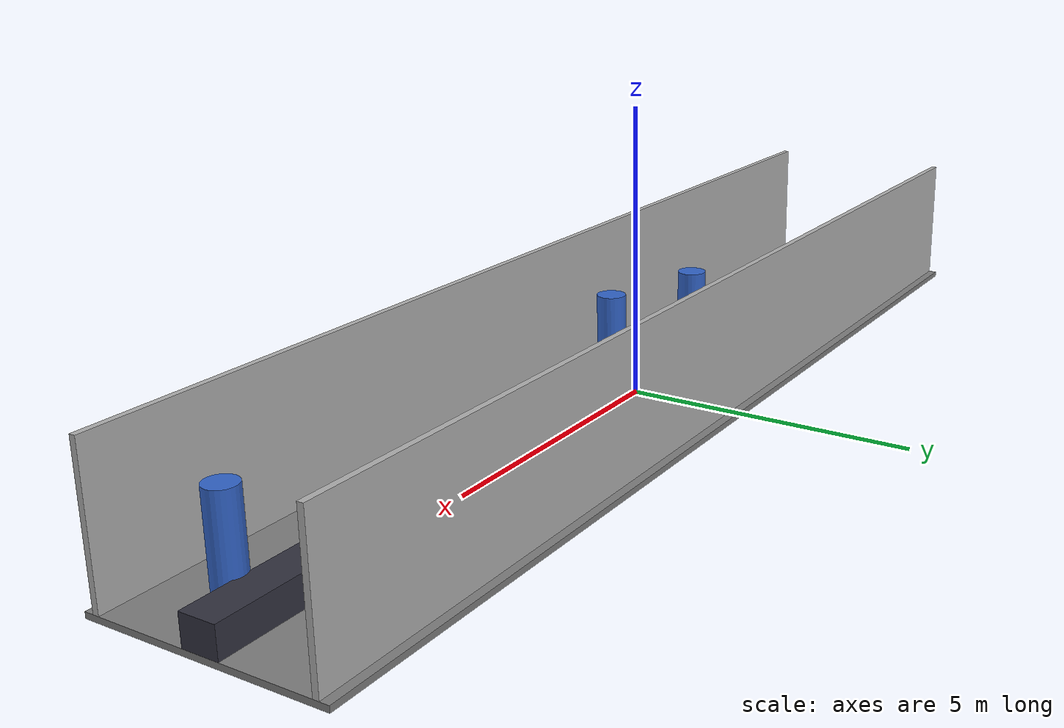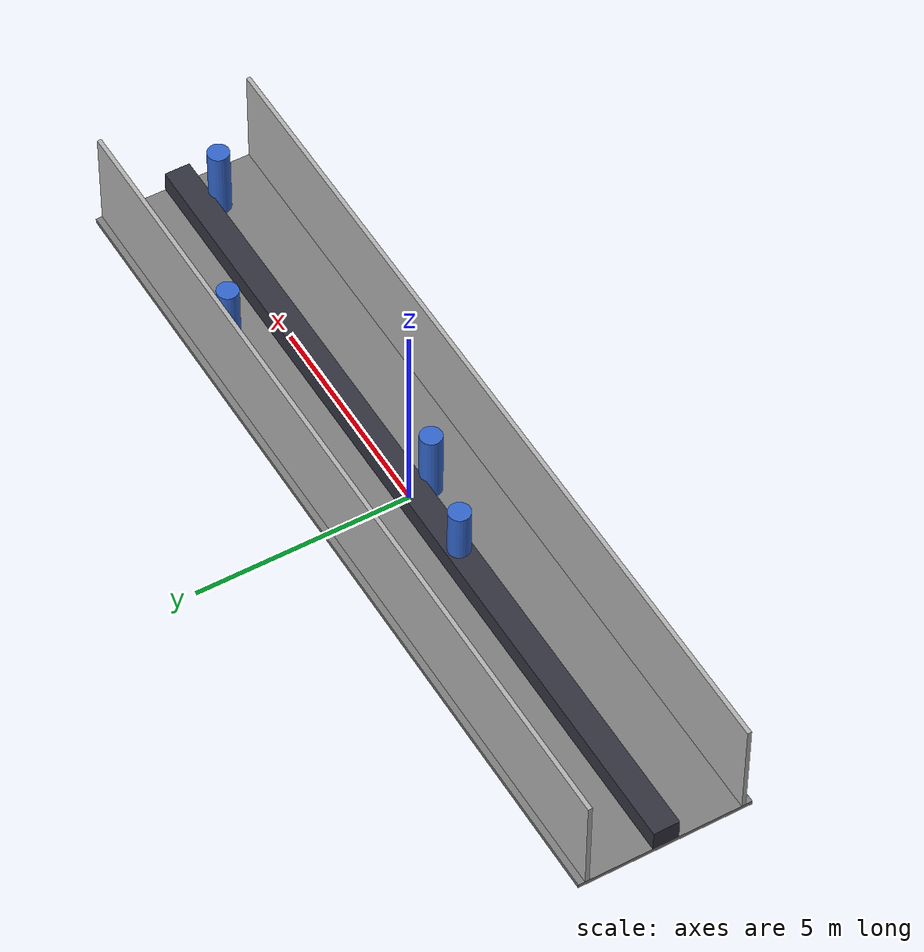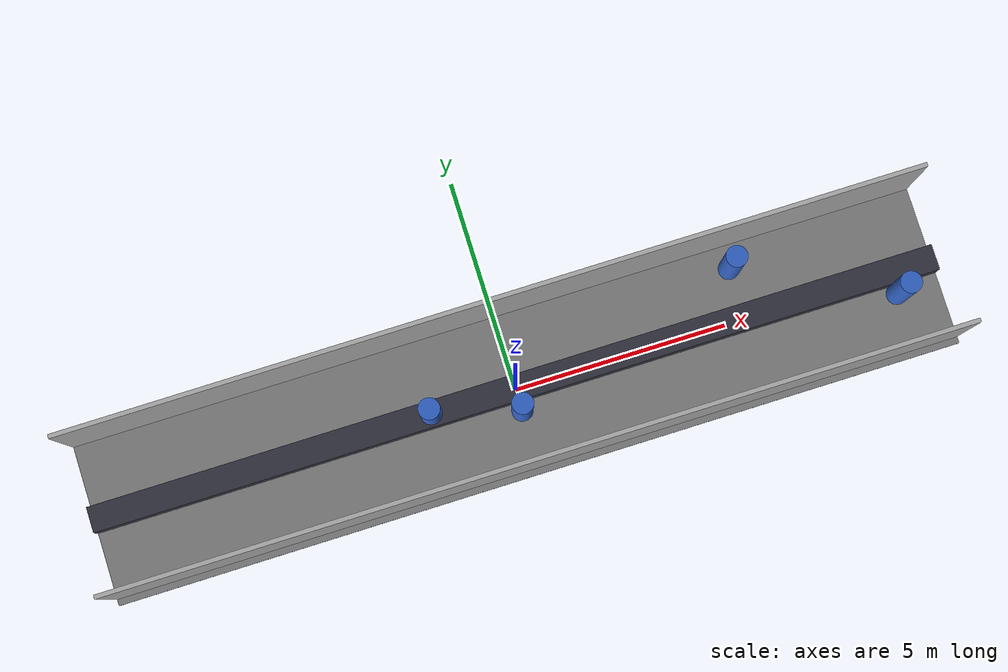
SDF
<?xml version="1.0" ?>
<sdf version="1.8">
  <world name="port_belt_corridor_fixed">
    <gravity>0 0 -9.81</gravity>
    <magnetic_field>0 0 0</magnetic_field>
    <scene>
      <ambient>0.3 0.3 0.3 1</ambient>
      <background>0.8 0.8 0.9 1</background>
    </scene>
    <physics type="ode">
      <max_step_size>0.005</max_step_size>
      <real_time_update_rate>200</real_time_update_rate>
      <real_time_factor>1.0</real_time_factor>
    </physics>

    <light name="corridor_light" type="directional">
      <cast_shadows>false</cast_shadows>
      <direction>-0.5 0.3 -1.0</direction>
      <diffuse>1 1 1 1</diffuse>
      <specular>0.2 0.2 0.2 1</specular>
    </light>

    <model name="corridor_floor">
      <static>true</static>
      <link name="floor_link">
        <collision name="collision">
          <geometry>
            <box>
              <size>20 4 0.1</size>
            </box>
          </geometry>
          <pose>0 0 -0.05 0 0 0</pose>
          <surface>
            <friction>
              <ode>
                <mu>0.8</mu>
                <mu2>0.8</mu2>
              </ode>
            </friction>
          </surface>
        </collision>
        <visual name="visual">
          <geometry>
            <box>
              <size>20 4 0.1</size>
            </box>
          </geometry>
          <pose>0 0 -0.05 0 0 0</pose>
          <material>
            <ambient>0.4 0.4 0.4 1</ambient>
            <diffuse>0.5 0.5 0.5 1</diffuse>
          </material>
        </visual>
      </link>
    </model>

    <model name="corridor_wall_left">
      <static>true</static>
      <pose>0 1.8 1.2 0 0 0</pose>
      <link name="wall">
        <collision name="collision">
          <geometry>
            <box>
              <size>20 0.1 2.4</size>
            </box>
          </geometry>
        </collision>
        <visual name="visual">
          <geometry>
            <box>
              <size>20 0.1 2.4</size>
            </box>
          </geometry>
          <material>
            <ambient>0.6 0.6 0.6 1</ambient>
            <diffuse>0.7 0.7 0.7 1</diffuse>
          </material>
        </visual>
      </link>
    </model>

    <model name="corridor_wall_right">
      <static>true</static>
      <pose>0 -1.8 1.2 0 0 0</pose>
      <link name="wall">
        <collision name="collision">
          <geometry>
            <box>
              <size>20 0.1 2.4</size>
            </box>
          </geometry>
        </collision>
        <visual name="visual">
          <geometry>
            <box>
              <size>20 0.1 2.4</size>
            </box>
          </geometry>
          <material>
            <ambient>0.6 0.6 0.6 1</ambient>
            <diffuse>0.7 0.7 0.7 1</diffuse>
          </material>
        </visual>
      </link>
    </model>

    <model name="conveyor_frame">
      <static>true</static>
      <pose>0 0 0.25 0 0 0</pose>
      <link name="frame">
        <collision name="collision">
          <geometry>
            <box>
              <size>20 0.6 0.5</size>
            </box>
          </geometry>
        </collision>
        <visual name="visual">
          <geometry>
            <box>
              <size>20 0.6 0.5</size>
            </box>
          </geometry>
          <material>
            <ambient>0.2 0.2 0.25 1</ambient>
            <diffuse>0.2 0.2 0.25 1</diffuse>
          </material>
        </visual>
      </link>
    </model>

    <include>
      <name>hot_target_station_a</name>
      <pose>5.5 1.2 0 0 0 0</pose>
      <uri>file://models/hot_target/model.sdf</uri>
    </include>

    <include>
      <name>hot_target_station_b</name>
      <pose>9.0 -0.5 0 0 0 0</pose>
      <uri>file://models/hot_target/model.sdf</uri>
    </include>

    <include>
      <name>pedestrian_actor</name>
      <pose>-2.0 0.0 0 0 0 0</pose>
      <uri>file://models/ped_actor/model.sdf</uri>
    </include>

    <include>
      <name>inspection_bot</name>
      <pose>0 -0.5 0 0 0 0</pose>
      <uri>file://models/inspection_bot/model.sdf</uri>
    </include>
  </world>
</sdf>

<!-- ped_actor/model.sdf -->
<sdf version="1.7">
  <model name="ped_actor">
    <pose>0 0 0 0 0 0</pose>
    <link name="body">
      <inertial>
        <mass>75.0</mass>
        <inertia>
          <ixx>2.0</ixx>
          <iyy>2.0</iyy>
          <izz>1.0</izz>
          <ixy>0.0</ixy>
          <ixz>0.0</ixz>
          <iyz>0.0</iyz>
        </inertia>
      </inertial>
      <collision name="collision">
        <geometry>
          <cylinder>
            <radius>0.25</radius>
            <length>1.7</length>
          </cylinder>
        </geometry>
        <pose>0 0 0.85 0 0 0</pose>
      </collision>
      <visual name="visual">
        <geometry>
          <cylinder>
            <radius>0.25</radius>
            <length>1.7</length>
          </cylinder>
        </geometry>
        <pose>0 0 0.85 0 0 0</pose>
        <material>
          <ambient>0.2 0.4 0.8 1</ambient>
          <diffuse>0.2 0.4 0.8 1</diffuse>
        </material>
      </visual>
    </link>
  </model>
</sdf>
